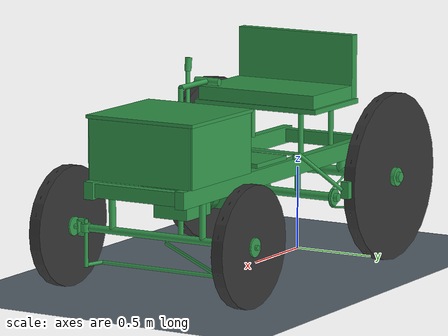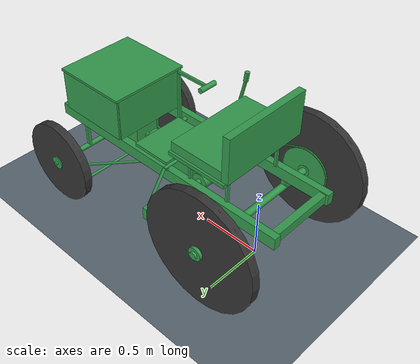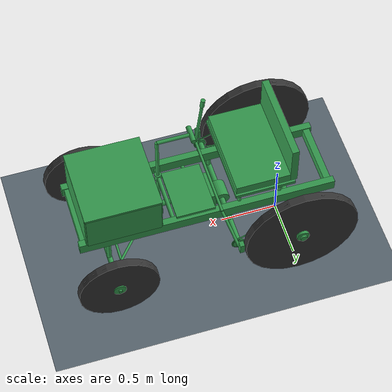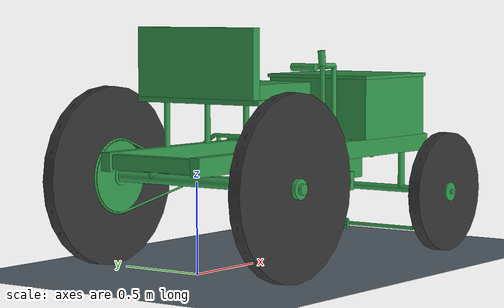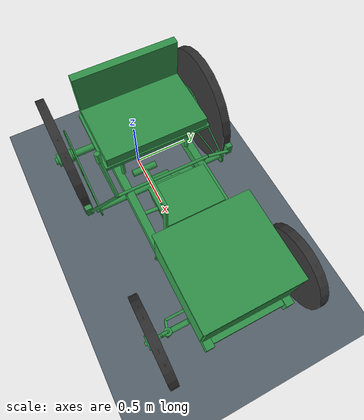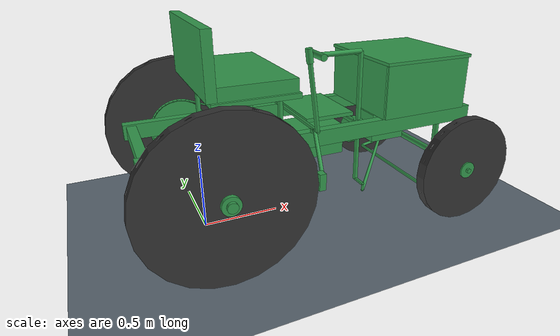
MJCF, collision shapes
<mujoco model="Benz Velo">
  <compiler angle="radian" inertiafromgeom="false" />
  <option timestep=".001" gravity="0 0 -9.81" integrator="implicitfast" cone="elliptic" impratio="50">
    <flag filterparent="disable" />
  </option>
  <visual>
    <global offwidth="1920" offheight="1080" />
  </visual>
  <default>
    <geom friction="0.8 .005 .0001" condim="3" solref=".005 1" />
  </default>
  <asset>
    <mesh name="chassis" file="chassis.obj" />
    <mesh name="knuckle_left" file="knuckle_left.obj" />
    <mesh name="knuckle_right" file="knuckle_right.obj" />
    <mesh name="tie_rod" file="tie_rod.obj" />
    <mesh name="column" file="column.obj" />
    <mesh name="drag_link" file="drag_link.obj" />
    <mesh name="rear_left" file="rear_left.obj" />
    <mesh name="front_left" file="front_left.obj" />
    <mesh name="rear_right" file="rear_right.obj" />
    <mesh name="front_right" file="front_right.obj" />
    <texture name="road_grid" type="2d" builtin="checker" rgb1=".25 .3 .34" rgb2=".45 .5 .54" width="256" height="256" />
    <material name="road" texture="road_grid" texrepeat="1 1" texuniform="true" />
  </asset>
  <worldbody>
    <light pos="0 -3 6" dir="0 0 -1" directional="true" />
    <geom name="slope" type="plane" size="1000 60 .1" quat="1 0 0 0" material="road" contype="1" conaffinity="6" />
    <body name="chassis" pos="0 0 0.003" quat="1 0 0 0">
      <freejoint name="root" />
      <inertial pos="0.8 0 0.62" mass="531.8" diaginertia="90 260 290" />
      <geom name="visual_chassis" type="mesh" mesh="chassis" contype="0" conaffinity="0" group="2" rgba=".25 .22 .2 1" />
      <geom name="Frame rail -1" type="box" contype="2" conaffinity="15" group="3" rgba=".2 .6 .3 .35" pos="0.725000024 -0.300000012 0.620000005" quat="1 0 0 0" size="1.125 0.0299999993 0.0500000007" />
      <geom name="Frame rail 1" type="box" contype="2" conaffinity="15" group="3" rgba=".2 .6 .3 .35" pos="0.725000024 0.300000012 0.620000005" quat="1 0 0 0" size="1.125 0.0299999993 0.0500000007" />
      <geom name="Frame crossmember -0.35" type="box" contype="2" conaffinity="15" group="3" rgba=".2 .6 .3 .35" pos="-0.349999994 0 0.620000005" quat="1 0 0 0" size="0.0299999993 0.300000012 0.0399999991" />
      <geom name="Frame crossmember 1.8" type="box" contype="2" conaffinity="15" group="3" rgba=".2 .6 .3 .35" pos="1.79999995 0 0.620000005" quat="1 0 0 0" size="0.0299999993 0.300000012 0.0399999991" />
      <geom name="Column bearing:0" type="cylinder" contype="2" conaffinity="15" group="3" rgba=".2 .6 .3 .35" fromto="1.01999998 -0.200000003 0.590000033 1.01999998 -0.200000003 0.649999976" size="0.03" />
      <geom name="Column crossmember -1:0" type="cylinder" contype="2" conaffinity="15" group="3" rgba=".2 .6 .3 .35" fromto="1.01999998 -0.270000011 0.620000005 1.01999998 -0.229999989 0.620000005" size="0.018" />
      <geom name="Column crossmember 1:0" type="cylinder" contype="2" conaffinity="15" group="3" rgba=".2 .6 .3 .35" fromto="1.01999998 -0.170000017 0.620000005 1.01999998 0.270000041 0.620000005" size="0.018" />
      <geom name="Axle mount -1:0" type="cylinder" contype="2" conaffinity="15" group="3" rgba=".2 .6 .3 .35" fromto="0 -0.300000012 0.49999997 0 -0.300000012 0.569999933" size="0.03" />
      <geom name="Front hanger -1:0" type="cylinder" contype="2" conaffinity="15" group="3" rgba=".2 .6 .3 .35" fromto="1.60000002 -0.300000012 0.569999993 1.60000002 -0.300000012 0.349999964" size="0.02" />
      <geom name="Axle mount 1:0" type="cylinder" contype="2" conaffinity="15" group="3" rgba=".2 .6 .3 .35" fromto="0 0.300000012 0.49999997 0 0.300000012 0.569999933" size="0.03" />
      <geom name="Front hanger 1:0" type="cylinder" contype="2" conaffinity="15" group="3" rgba=".2 .6 .3 .35" fromto="1.60000002 0.300000012 0.569999993 1.60000002 0.300000012 0.349999964" size="0.02" />
      <geom name="Rear axle:0" type="cylinder" contype="2" conaffinity="15" group="3" rgba=".2 .6 .3 .35" fromto="0 -0.705000043 0.500000119 0 0.705000043 0.499999911" size="0.03" />
      <geom name="Front beam:0" type="cylinder" contype="2" conaffinity="15" group="3" rgba=".2 .6 .3 .35" fromto="1.60000002 -0.450000048 0.350000054 1.60000002 0.450000048 0.349999934" size="0.022" />
      <geom name="Axle eye 1:0" type="cylinder" contype="2" conaffinity="15" group="3" rgba=".2 .6 .3 .35" fromto="1.60000002 0.479999989 0.324999988 1.60000002 0.479999989 0.375" size="0.03" />
      <geom name="Axle eye -1:0" type="cylinder" contype="2" conaffinity="15" group="3" rgba=".2 .6 .3 .35" fromto="1.60000002 -0.479999989 0.324999988 1.60000002 -0.479999989 0.375" size="0.03" />
      <geom name="Crankcase" type="box" contype="2" conaffinity="15" group="3" rgba=".2 .6 .3 .35" pos="1.33000004 0 0.519999981" quat="1 0 0 0" size="0.129999995 0.109999999 0.100000001" />
      <geom name="Engine bearer -1:0" type="cylinder" contype="2" conaffinity="15" group="3" rgba=".2 .6 .3 .35" fromto="1.33000004 -0.270000011 0.569999993 1.33000004 -0.109999985 0.579999983" size="0.016" />
      <geom name="Engine bearer 1:0" type="cylinder" contype="2" conaffinity="15" group="3" rgba=".2 .6 .3 .35" fromto="1.33000004 0.269999981 0.569999993 1.33000004 0.109999999 0.579999983" size="0.016" />
      <geom name="Cylinder 1:0" type="cylinder" contype="2" conaffinity="15" group="3" rgba=".2 .6 .3 .35" fromto="1.26999998 1.49011612e-08 0.619999945 1.26999998 0.0486214757 0.895746171" size="0.06" />
      <geom name="Cylinder 2:0" type="cylinder" contype="2" conaffinity="15" group="3" rgba=".2 .6 .3 .35" fromto="1.39999998 1.67638063e-08 0.620000005 1.39999998 -0.0486215055 0.895746112" size="0.06" />
      <geom name="Clutch shaft:0" type="cylinder" contype="2" conaffinity="15" group="3" rgba=".2 .6 .3 .35" fromto="1.21000004 0 0.5 0.940000057 0 0.5" size="0.025" />
      <geom name="Clutch cone:0" type="cylinder" contype="2" conaffinity="15" group="3" rgba=".2 .6 .3 .35" fromto="1.05999994 0 0.5 1.13000011 0 0.5" size="0.09" />
      <geom name="Gearbox" type="box" contype="2" conaffinity="15" group="3" rgba=".2 .6 .3 .35" pos="0.774999976 0 0.5" quat="1 0 0 0" size="0.174999997 0.129999995 0.100000001" />
      <geom name="Gearbox cradle -1:0" type="cylinder" contype="2" conaffinity="15" group="3" rgba=".2 .6 .3 .35" fromto="0.779999971 -0.270000011 0.569999993 0.779999971 -0.129999995 0.550000012" size="0.016" />
      <geom name="Gearbox cradle 1:0" type="cylinder" contype="2" conaffinity="15" group="3" rgba=".2 .6 .3 .35" fromto="0.779999971 0.270000011 0.569999993 0.779999971 0.129999995 0.550000012" size="0.016" />
      <geom name="Bevel housing:0" type="cylinder" contype="2" conaffinity="15" group="3" rgba=".2 .6 .3 .35" fromto="0.529999971 -0.0800000057 0.449999988 0.529999971 0.0800000057 0.449999988" size="0.07" />
      <geom name="Countershaft:0" type="cylinder" contype="2" conaffinity="15" group="3" rgba=".2 .6 .3 .35" fromto="0.529999971 -0.575000048 0.450000077 0.529999971 0.575000048 0.449999899" size="0.025" />
      <geom name="Countershaft hanger -1:0" type="cylinder" contype="2" conaffinity="15" group="3" rgba=".2 .6 .3 .35" fromto="0.529999971 -0.300000012 0.569999993 0.529999971 -0.300000012 0.449999988" size="0.018" />
      <geom name="Countershaft sprocket -1:0" type="cylinder" contype="2" conaffinity="15" group="3" rgba=".2 .6 .3 .35" fromto="0.529999971 -0.550999999 0.449999988 0.529999971 -0.538999915 0.449999988" size="0.05" />
      <geom name="Drive chain -1:0" type="capsule" contype="2" conaffinity="15" group="3" rgba=".2 .6 .3 .35" fromto="0.540662646 -0.545000017 0.395024478 0.547979653 -0.545000017 0.396964788" size="0.006" />
      <geom name="Drive chain -1:1" type="capsule" contype="2" conaffinity="15" group="3" rgba=".2 .6 .3 .35" fromto="0.547979653 -0.545000017 0.396964788 0.554968119 -0.545000017 0.39987424" size="0.006" />
      <geom name="Drive chain -1:2" type="capsule" contype="2" conaffinity="15" group="3" rgba=".2 .6 .3 .35" fromto="0.554968119 -0.545000017 0.39987424 0.561500371 -0.545000017 0.403699607" size="0.006" />
      <geom name="Drive chain -1:3" type="capsule" contype="2" conaffinity="15" group="3" rgba=".2 .6 .3 .35" fromto="0.561500371 -0.545000017 0.403699607 0.56745702 -0.545000017 0.408371001" size="0.006" />
      <geom name="Drive chain -1:4" type="capsule" contype="2" conaffinity="15" group="3" rgba=".2 .6 .3 .35" fromto="0.56745702 -0.545000017 0.408371001 0.57272917 -0.545000017 0.413803101" size="0.006" />
      <geom name="Drive chain -1:5" type="capsule" contype="2" conaffinity="15" group="3" rgba=".2 .6 .3 .35" fromto="0.57272917 -0.545000017 0.413803101 0.577220559 -0.545000017 0.419896603" size="0.006" />
      <geom name="Drive chain -1:6" type="capsule" contype="2" conaffinity="15" group="3" rgba=".2 .6 .3 .35" fromto="0.577220559 -0.545000017 0.419896603 0.580849111 -0.545000017 0.426540166" size="0.006" />
      <geom name="Drive chain -1:7" type="capsule" contype="2" conaffinity="15" group="3" rgba=".2 .6 .3 .35" fromto="0.580849111 -0.545000017 0.426540166 0.583548546 -0.545000017 0.433612436" size="0.006" />
      <geom name="Drive chain -1:8" type="capsule" contype="2" conaffinity="15" group="3" rgba=".2 .6 .3 .35" fromto="0.583548546 -0.545000017 0.433612436 0.585269451 -0.545000017 0.44098413" size="0.006" />
      <geom name="Drive chain -1:9" type="capsule" contype="2" conaffinity="15" group="3" rgba=".2 .6 .3 .35" fromto="0.585269451 -0.545000017 0.44098413 0.585980415 -0.545000017 0.448520571" size="0.006" />
      <geom name="Drive chain -1:10" type="capsule" contype="2" conaffinity="15" group="3" rgba=".2 .6 .3 .35" fromto="0.585980415 -0.545000017 0.448520571 0.585668504 -0.545000017 0.456084043" size="0.006" />
      <geom name="Drive chain -1:11" type="capsule" contype="2" conaffinity="15" group="3" rgba=".2 .6 .3 .35" fromto="0.585668504 -0.545000017 0.456084043 0.584339321 -0.545000017 0.463536352" size="0.006" />
      <geom name="Drive chain -1:12" type="capsule" contype="2" conaffinity="15" group="3" rgba=".2 .6 .3 .35" fromto="0.584339321 -0.545000017 0.463536352 0.582017243 -0.545000017 0.470741302" size="0.006" />
      <geom name="Drive chain -1:13" type="capsule" contype="2" conaffinity="15" group="3" rgba=".2 .6 .3 .35" fromto="0.582017243 -0.545000017 0.470741302 0.57874465 -0.545000017 0.477567255" size="0.006" />
      <geom name="Drive chain -1:14" type="capsule" contype="2" conaffinity="15" group="3" rgba=".2 .6 .3 .35" fromto="0.57874465 -0.545000017 0.477567255 0.574581385 -0.545000017 0.48388949" size="0.006" />
      <geom name="Drive chain -1:15" type="capsule" contype="2" conaffinity="15" group="3" rgba=".2 .6 .3 .35" fromto="0.574581385 -0.545000017 0.48388949 0.569603443 -0.545000017 0.489592463" size="0.006" />
      <geom name="Drive chain -1:16" type="capsule" contype="2" conaffinity="15" group="3" rgba=".2 .6 .3 .35" fromto="0.569603443 -0.545000017 0.489592463 0.563901901 -0.545000017 0.494571954" size="0.006" />
      <geom name="Drive chain -1:17" type="capsule" contype="2" conaffinity="15" group="3" rgba=".2 .6 .3 .35" fromto="0.563901901 -0.545000017 0.494571954 0.557580829 -0.545000017 0.498737007" size="0.006" />
      <geom name="Drive chain -1:18" type="capsule" contype="2" conaffinity="15" group="3" rgba=".2 .6 .3 .35" fromto="0.557580829 -0.545000017 0.498737007 0.550755799 -0.545000017 0.502011478" size="0.006" />
      <geom name="Drive chain -1:19" type="capsule" contype="2" conaffinity="15" group="3" rgba=".2 .6 .3 .35" fromto="0.550755799 -0.545000017 0.502011478 0.0763517097 -0.545000017 0.691328049" size="0.006" />
      <geom name="Drive chain -1:20" type="capsule" contype="2" conaffinity="15" group="3" rgba=".2 .6 .3 .35" fromto="0.0763517097 -0.545000017 0.691328049 0.0494035929 -0.545000017 0.699988246" size="0.006" />
      <geom name="Drive chain -1:21" type="capsule" contype="2" conaffinity="15" group="3" rgba=".2 .6 .3 .35" fromto="0.0494035929 -0.545000017 0.699988246 0.0215227306 -0.545000017 0.704872549" size="0.006" />
      <geom name="Drive chain -1:22" type="capsule" contype="2" conaffinity="15" group="3" rgba=".2 .6 .3 .35" fromto="0.0215227306 -0.545000017 0.704872549 -0.0067644855 -0.545000017 0.705888867" size="0.006" />
      <geom name="Drive chain -1:23" type="capsule" contype="2" conaffinity="15" group="3" rgba=".2 .6 .3 .35" fromto="-0.0067644855 -0.545000017 0.705888867 -0.0349239893 -0.545000017 0.70301801" size="0.006" />
      <geom name="Drive chain -1:24" type="capsule" contype="2" conaffinity="15" group="3" rgba=".2 .6 .3 .35" fromto="-0.0349239893 -0.545000017 0.70301801 -0.0624241158 -0.545000017 0.696314096" size="0.006" />
      <geom name="Drive chain -1:25" type="capsule" contype="2" conaffinity="15" group="3" rgba=".2 .6 .3 .35" fromto="-0.0624241158 -0.545000017 0.696314096 -0.0887456685 -0.545000017 0.685903788" size="0.006" />
      <geom name="Drive chain -1:26" type="capsule" contype="2" conaffinity="15" group="3" rgba=".2 .6 .3 .35" fromto="-0.0887456685 -0.545000017 0.685903788 -0.11339169 -0.545000017 0.67198348" size="0.006" />
      <geom name="Drive chain -1:27" type="capsule" contype="2" conaffinity="15" group="3" rgba=".2 .6 .3 .35" fromto="-0.11339169 -0.545000017 0.67198348 -0.135896847 -0.545000017 0.654816151" size="0.006" />
      <geom name="Drive chain -1:28" type="capsule" contype="2" conaffinity="15" group="3" rgba=".2 .6 .3 .35" fromto="-0.135896847 -0.545000017 0.654816151 -0.155836254 -0.545000017 0.634725869" size="0.006" />
      <geom name="Drive chain -1:29" type="capsule" contype="2" conaffinity="15" group="3" rgba=".2 .6 .3 .35" fromto="-0.155836254 -0.545000017 0.634725869 -0.172833428 -0.545000017 0.612091959" size="0.006" />
      <geom name="Drive chain -1:30" type="capsule" contype="2" conaffinity="15" group="3" rgba=".2 .6 .3 .35" fromto="-0.172833428 -0.545000017 0.612091959 -0.186567485 -0.545000017 0.587341666" size="0.006" />
      <geom name="Drive chain -1:31" type="capsule" contype="2" conaffinity="15" group="3" rgba=".2 .6 .3 .35" fromto="-0.186567485 -0.545000017 0.587341666 -0.196779117 -0.545000017 0.560942411" size="0.006" />
      <geom name="Drive chain -1:32" type="capsule" contype="2" conaffinity="15" group="3" rgba=".2 .6 .3 .35" fromto="-0.196779117 -0.545000017 0.560942411 -0.203275517 -0.545000017 0.533392489" size="0.006" />
      <geom name="Drive chain -1:33" type="capsule" contype="2" conaffinity="15" group="3" rgba=".2 .6 .3 .35" fromto="-0.203275517 -0.545000017 0.533392489 -0.205934048 -0.545000017 0.505212188" size="0.006" />
      <geom name="Drive chain -1:34" type="capsule" contype="2" conaffinity="15" group="3" rgba=".2 .6 .3 .35" fromto="-0.205934048 -0.545000017 0.505212188 -0.204704508 -0.545000017 0.47693342" size="0.006" />
      <geom name="Drive chain -1:35" type="capsule" contype="2" conaffinity="15" group="3" rgba=".2 .6 .3 .35" fromto="-0.204704508 -0.545000017 0.47693342 -0.199610099 -0.545000017 0.449090183" size="0.006" />
      <geom name="Drive chain -1:36" type="capsule" contype="2" conaffinity="15" group="3" rgba=".2 .6 .3 .35" fromto="-0.199610099 -0.545000017 0.449090183 -0.190747008 -0.545000017 0.422208101" size="0.006" />
      <geom name="Drive chain -1:37" type="capsule" contype="2" conaffinity="15" group="3" rgba=".2 .6 .3 .35" fromto="-0.190747008 -0.545000017 0.422208101 -0.178282589 -0.545000017 0.396794766" size="0.006" />
      <geom name="Drive chain -1:38" type="capsule" contype="2" conaffinity="15" group="3" rgba=".2 .6 .3 .35" fromto="-0.178282589 -0.545000017 0.396794766 -0.162452161 -0.545000017 0.373329967" size="0.006" />
      <geom name="Drive chain -1:39" type="capsule" contype="2" conaffinity="15" group="3" rgba=".2 .6 .3 .35" fromto="-0.162452161 -0.545000017 0.373329967 -0.143554598 -0.545000017 0.352256715" size="0.006" />
      <geom name="Drive chain -1:40" type="capsule" contype="2" conaffinity="15" group="3" rgba=".2 .6 .3 .35" fromto="-0.143554598 -0.545000017 0.352256715 -0.1219467 -0.545000017 0.333972871" size="0.006" />
      <geom name="Drive chain -1:41" type="capsule" contype="2" conaffinity="15" group="3" rgba=".2 .6 .3 .35" fromto="-0.1219467 -0.545000017 0.333972871 -0.0980364308 -0.545000017 0.318823695" size="0.006" />
      <geom name="Drive chain -1:42" type="capsule" contype="2" conaffinity="15" group="3" rgba=".2 .6 .3 .35" fromto="-0.0980364308 -0.545000017 0.318823695 -0.0722752139 -0.545000017 0.30709511" size="0.006" />
      <geom name="Drive chain -1:43" type="capsule" contype="2" conaffinity="15" group="3" rgba=".2 .6 .3 .35" fromto="-0.0722752139 -0.545000017 0.30709511 -0.0451494269 -0.545000017 0.299008638" size="0.006" />
      <geom name="Drive chain -1:44" type="capsule" contype="2" conaffinity="15" group="3" rgba=".2 .6 .3 .35" fromto="-0.0451494269 -0.545000017 0.299008638 -0.0171712078 -0.545000017 0.294716895" size="0.006" />
      <geom name="Drive chain -1:45" type="capsule" contype="2" conaffinity="15" group="3" rgba=".2 .6 .3 .35" fromto="-0.0171712078 -0.545000017 0.294716895 0.0111312037 -0.545000017 0.294300973" size="0.006" />
      <geom name="Drive chain -1:46" type="capsule" contype="2" conaffinity="15" group="3" rgba=".2 .6 .3 .35" fromto="0.0111312037 -0.545000017 0.294300973 0.0392234586 -0.545000017 0.297768652" size="0.006" />
      <geom name="Drive chain -1:47" type="capsule" contype="2" conaffinity="15" group="3" rgba=".2 .6 .3 .35" fromto="0.0392234586 -0.545000017 0.297768652 0.540662646 -0.545000017 0.395024478" size="0.006" />
      <geom name="Brake block -1" type="box" contype="2" conaffinity="15" group="3" rgba=".2 .6 .3 .35" pos="0.529999971 -0.625 0.5" quat="1 0 0 0" size="0.0199999996 0.0250000004 0.0500000007" />
      <geom name="Brake arm -1:0" type="cylinder" contype="2" conaffinity="15" group="3" rgba=".2 .6 .3 .35" fromto="0.550000012 -0.610000014 0.50000006 0.620000064 -0.359999985 0.699999988" size="0.012" />
      <geom name="Brake shaft bracket -1:0" type="cylinder" contype="2" conaffinity="15" group="3" rgba=".2 .6 .3 .35" fromto="0.620000005 -0.330000013 0.670000017 0.620000005 -0.330000013 0.699999988" size="0.012" />
      <geom name="Countershaft hanger 1:0" type="cylinder" contype="2" conaffinity="15" group="3" rgba=".2 .6 .3 .35" fromto="0.529999971 0.300000012 0.569999993 0.529999971 0.300000012 0.449999988" size="0.018" />
      <geom name="Countershaft sprocket 1:0" type="cylinder" contype="2" conaffinity="15" group="3" rgba=".2 .6 .3 .35" fromto="0.529999971 0.538999915 0.449999988 0.529999971 0.550999999 0.449999988" size="0.05" />
      <geom name="Drive chain 1:0" type="capsule" contype="2" conaffinity="15" group="3" rgba=".2 .6 .3 .35" fromto="0.540662646 0.545000017 0.395024478 0.547979653 0.545000017 0.396964788" size="0.006" />
      <geom name="Drive chain 1:1" type="capsule" contype="2" conaffinity="15" group="3" rgba=".2 .6 .3 .35" fromto="0.547979653 0.545000017 0.396964788 0.554968119 0.545000017 0.39987424" size="0.006" />
      <geom name="Drive chain 1:2" type="capsule" contype="2" conaffinity="15" group="3" rgba=".2 .6 .3 .35" fromto="0.554968119 0.545000017 0.39987424 0.561500371 0.545000017 0.403699607" size="0.006" />
      <geom name="Drive chain 1:3" type="capsule" contype="2" conaffinity="15" group="3" rgba=".2 .6 .3 .35" fromto="0.561500371 0.545000017 0.403699607 0.56745702 0.545000017 0.408371001" size="0.006" />
      <geom name="Drive chain 1:4" type="capsule" contype="2" conaffinity="15" group="3" rgba=".2 .6 .3 .35" fromto="0.56745702 0.545000017 0.408371001 0.57272917 0.545000017 0.413803101" size="0.006" />
      <geom name="Drive chain 1:5" type="capsule" contype="2" conaffinity="15" group="3" rgba=".2 .6 .3 .35" fromto="0.57272917 0.545000017 0.413803101 0.577220559 0.545000017 0.419896603" size="0.006" />
      <geom name="Drive chain 1:6" type="capsule" contype="2" conaffinity="15" group="3" rgba=".2 .6 .3 .35" fromto="0.577220559 0.545000017 0.419896603 0.580849111 0.545000017 0.426540166" size="0.006" />
      <geom name="Drive chain 1:7" type="capsule" contype="2" conaffinity="15" group="3" rgba=".2 .6 .3 .35" fromto="0.580849111 0.545000017 0.426540166 0.583548546 0.545000017 0.433612436" size="0.006" />
      <geom name="Drive chain 1:8" type="capsule" contype="2" conaffinity="15" group="3" rgba=".2 .6 .3 .35" fromto="0.583548546 0.545000017 0.433612436 0.585269451 0.545000017 0.44098413" size="0.006" />
      <geom name="Drive chain 1:9" type="capsule" contype="2" conaffinity="15" group="3" rgba=".2 .6 .3 .35" fromto="0.585269451 0.545000017 0.44098413 0.585980415 0.545000017 0.448520571" size="0.006" />
      <geom name="Drive chain 1:10" type="capsule" contype="2" conaffinity="15" group="3" rgba=".2 .6 .3 .35" fromto="0.585980415 0.545000017 0.448520571 0.585668504 0.545000017 0.456084043" size="0.006" />
      <geom name="Drive chain 1:11" type="capsule" contype="2" conaffinity="15" group="3" rgba=".2 .6 .3 .35" fromto="0.585668504 0.545000017 0.456084043 0.584339321 0.545000017 0.463536352" size="0.006" />
      <geom name="Drive chain 1:12" type="capsule" contype="2" conaffinity="15" group="3" rgba=".2 .6 .3 .35" fromto="0.584339321 0.545000017 0.463536352 0.582017243 0.545000017 0.470741302" size="0.006" />
      <geom name="Drive chain 1:13" type="capsule" contype="2" conaffinity="15" group="3" rgba=".2 .6 .3 .35" fromto="0.582017243 0.545000017 0.470741302 0.57874465 0.545000017 0.477567255" size="0.006" />
      <geom name="Drive chain 1:14" type="capsule" contype="2" conaffinity="15" group="3" rgba=".2 .6 .3 .35" fromto="0.57874465 0.545000017 0.477567255 0.574581385 0.545000017 0.48388949" size="0.006" />
      <geom name="Drive chain 1:15" type="capsule" contype="2" conaffinity="15" group="3" rgba=".2 .6 .3 .35" fromto="0.574581385 0.545000017 0.48388949 0.569603443 0.545000017 0.489592463" size="0.006" />
      <geom name="Drive chain 1:16" type="capsule" contype="2" conaffinity="15" group="3" rgba=".2 .6 .3 .35" fromto="0.569603443 0.545000017 0.489592463 0.563901901 0.545000017 0.494571954" size="0.006" />
      <geom name="Drive chain 1:17" type="capsule" contype="2" conaffinity="15" group="3" rgba=".2 .6 .3 .35" fromto="0.563901901 0.545000017 0.494571954 0.557580829 0.545000017 0.498737007" size="0.006" />
      <geom name="Drive chain 1:18" type="capsule" contype="2" conaffinity="15" group="3" rgba=".2 .6 .3 .35" fromto="0.557580829 0.545000017 0.498737007 0.550755799 0.545000017 0.502011478" size="0.006" />
      <geom name="Drive chain 1:19" type="capsule" contype="2" conaffinity="15" group="3" rgba=".2 .6 .3 .35" fromto="0.550755799 0.545000017 0.502011478 0.0763517097 0.545000017 0.691328049" size="0.006" />
      <geom name="Drive chain 1:20" type="capsule" contype="2" conaffinity="15" group="3" rgba=".2 .6 .3 .35" fromto="0.0763517097 0.545000017 0.691328049 0.0494035929 0.545000017 0.699988246" size="0.006" />
      <geom name="Drive chain 1:21" type="capsule" contype="2" conaffinity="15" group="3" rgba=".2 .6 .3 .35" fromto="0.0494035929 0.545000017 0.699988246 0.0215227306 0.545000017 0.704872549" size="0.006" />
      <geom name="Drive chain 1:22" type="capsule" contype="2" conaffinity="15" group="3" rgba=".2 .6 .3 .35" fromto="0.0215227306 0.545000017 0.704872549 -0.0067644855 0.545000017 0.705888867" size="0.006" />
      <geom name="Drive chain 1:23" type="capsule" contype="2" conaffinity="15" group="3" rgba=".2 .6 .3 .35" fromto="-0.0067644855 0.545000017 0.705888867 -0.0349239893 0.545000017 0.70301801" size="0.006" />
      <geom name="Drive chain 1:24" type="capsule" contype="2" conaffinity="15" group="3" rgba=".2 .6 .3 .35" fromto="-0.0349239893 0.545000017 0.70301801 -0.0624241158 0.545000017 0.696314096" size="0.006" />
      <geom name="Drive chain 1:25" type="capsule" contype="2" conaffinity="15" group="3" rgba=".2 .6 .3 .35" fromto="-0.0624241158 0.545000017 0.696314096 -0.0887456685 0.545000017 0.685903788" size="0.006" />
      <geom name="Drive chain 1:26" type="capsule" contype="2" conaffinity="15" group="3" rgba=".2 .6 .3 .35" fromto="-0.0887456685 0.545000017 0.685903788 -0.11339169 0.545000017 0.67198348" size="0.006" />
      <geom name="Drive chain 1:27" type="capsule" contype="2" conaffinity="15" group="3" rgba=".2 .6 .3 .35" fromto="-0.11339169 0.545000017 0.67198348 -0.135896847 0.545000017 0.654816151" size="0.006" />
      <geom name="Drive chain 1:28" type="capsule" contype="2" conaffinity="15" group="3" rgba=".2 .6 .3 .35" fromto="-0.135896847 0.545000017 0.654816151 -0.155836254 0.545000017 0.634725869" size="0.006" />
      <geom name="Drive chain 1:29" type="capsule" contype="2" conaffinity="15" group="3" rgba=".2 .6 .3 .35" fromto="-0.155836254 0.545000017 0.634725869 -0.172833428 0.545000017 0.612091959" size="0.006" />
      <geom name="Drive chain 1:30" type="capsule" contype="2" conaffinity="15" group="3" rgba=".2 .6 .3 .35" fromto="-0.172833428 0.545000017 0.612091959 -0.186567485 0.545000017 0.587341666" size="0.006" />
      <geom name="Drive chain 1:31" type="capsule" contype="2" conaffinity="15" group="3" rgba=".2 .6 .3 .35" fromto="-0.186567485 0.545000017 0.587341666 -0.196779117 0.545000017 0.560942411" size="0.006" />
      <geom name="Drive chain 1:32" type="capsule" contype="2" conaffinity="15" group="3" rgba=".2 .6 .3 .35" fromto="-0.196779117 0.545000017 0.560942411 -0.203275517 0.545000017 0.533392489" size="0.006" />
      <geom name="Drive chain 1:33" type="capsule" contype="2" conaffinity="15" group="3" rgba=".2 .6 .3 .35" fromto="-0.203275517 0.545000017 0.533392489 -0.205934048 0.545000017 0.505212188" size="0.006" />
      <geom name="Drive chain 1:34" type="capsule" contype="2" conaffinity="15" group="3" rgba=".2 .6 .3 .35" fromto="-0.205934048 0.545000017 0.505212188 -0.204704508 0.545000017 0.47693342" size="0.006" />
      <geom name="Drive chain 1:35" type="capsule" contype="2" conaffinity="15" group="3" rgba=".2 .6 .3 .35" fromto="-0.204704508 0.545000017 0.47693342 -0.199610099 0.545000017 0.449090183" size="0.006" />
      <geom name="Drive chain 1:36" type="capsule" contype="2" conaffinity="15" group="3" rgba=".2 .6 .3 .35" fromto="-0.199610099 0.545000017 0.449090183 -0.190747008 0.545000017 0.422208101" size="0.006" />
      <geom name="Drive chain 1:37" type="capsule" contype="2" conaffinity="15" group="3" rgba=".2 .6 .3 .35" fromto="-0.190747008 0.545000017 0.422208101 -0.178282589 0.545000017 0.396794766" size="0.006" />
      <geom name="Drive chain 1:38" type="capsule" contype="2" conaffinity="15" group="3" rgba=".2 .6 .3 .35" fromto="-0.178282589 0.545000017 0.396794766 -0.162452161 0.545000017 0.373329967" size="0.006" />
      <geom name="Drive chain 1:39" type="capsule" contype="2" conaffinity="15" group="3" rgba=".2 .6 .3 .35" fromto="-0.162452161 0.545000017 0.373329967 -0.143554598 0.545000017 0.352256715" size="0.006" />
      <geom name="Drive chain 1:40" type="capsule" contype="2" conaffinity="15" group="3" rgba=".2 .6 .3 .35" fromto="-0.143554598 0.545000017 0.352256715 -0.1219467 0.545000017 0.333972871" size="0.006" />
      <geom name="Drive chain 1:41" type="capsule" contype="2" conaffinity="15" group="3" rgba=".2 .6 .3 .35" fromto="-0.1219467 0.545000017 0.333972871 -0.0980364308 0.545000017 0.318823695" size="0.006" />
      <geom name="Drive chain 1:42" type="capsule" contype="2" conaffinity="15" group="3" rgba=".2 .6 .3 .35" fromto="-0.0980364308 0.545000017 0.318823695 -0.0722752139 0.545000017 0.30709511" size="0.006" />
      <geom name="Drive chain 1:43" type="capsule" contype="2" conaffinity="15" group="3" rgba=".2 .6 .3 .35" fromto="-0.0722752139 0.545000017 0.30709511 -0.0451494269 0.545000017 0.299008638" size="0.006" />
      <geom name="Drive chain 1:44" type="capsule" contype="2" conaffinity="15" group="3" rgba=".2 .6 .3 .35" fromto="-0.0451494269 0.545000017 0.299008638 -0.0171712078 0.545000017 0.294716895" size="0.006" />
      <geom name="Drive chain 1:45" type="capsule" contype="2" conaffinity="15" group="3" rgba=".2 .6 .3 .35" fromto="-0.0171712078 0.545000017 0.294716895 0.0111312037 0.545000017 0.294300973" size="0.006" />
      <geom name="Drive chain 1:46" type="capsule" contype="2" conaffinity="15" group="3" rgba=".2 .6 .3 .35" fromto="0.0111312037 0.545000017 0.294300973 0.0392234586 0.545000017 0.297768652" size="0.006" />
      <geom name="Drive chain 1:47" type="capsule" contype="2" conaffinity="15" group="3" rgba=".2 .6 .3 .35" fromto="0.0392234586 0.545000017 0.297768652 0.540662646 0.545000017 0.395024478" size="0.006" />
      <geom name="Brake block 1" type="box" contype="2" conaffinity="15" group="3" rgba=".2 .6 .3 .35" pos="0.529999971 0.625 0.5" quat="1 0 0 0" size="0.0199999996 0.0250000004 0.0500000007" />
      <geom name="Brake arm 1:0" type="cylinder" contype="2" conaffinity="15" group="3" rgba=".2 .6 .3 .35" fromto="0.550000072 0.610000014 0.5 0.620000005 0.360000014 0.700000048" size="0.012" />
      <geom name="Brake shaft bracket 1:0" type="cylinder" contype="2" conaffinity="15" group="3" rgba=".2 .6 .3 .35" fromto="0.620000005 0.330000013 0.670000017 0.620000005 0.330000013 0.699999988" size="0.012" />
      <geom name="Brake cross shaft:0" type="cylinder" contype="2" conaffinity="15" group="3" rgba=".2 .6 .3 .35" fromto="0.620000005 -0.409999907 0.699999988 0.620000005 0.359999955 0.699999988" size="0.012" />
      <geom name="Brake lever:0" type="cylinder" contype="2" conaffinity="15" group="3" rgba=".2 .6 .3 .35" fromto="0.620000005 -0.400000006 0.699999928 0.550000072 -0.440000027 1.12" size="0.014" />
      <geom name="Brake lever grip:0" type="cylinder" contype="2" conaffinity="15" group="3" rgba=".2 .6 .3 .35" fromto="0.550000012 -0.439999998 1.12000012 0.540000021 -0.439999998 1.20000005" size="0.02" />
      <geom name="Seat support 0.08.-1:0" type="cylinder" contype="2" conaffinity="15" group="3" rgba=".2 .6 .3 .35" fromto="0.0799999982 -0.270000011 0.670000017 0.0799999982 -0.270000011 0.920000017" size="0.016" />
      <geom name="Seat support 0.08.1:0" type="cylinder" contype="2" conaffinity="15" group="3" rgba=".2 .6 .3 .35" fromto="0.0799999982 0.270000011 0.670000017 0.0799999982 0.270000011 0.920000017" size="0.016" />
      <geom name="Seat support 0.44.-1:0" type="cylinder" contype="2" conaffinity="15" group="3" rgba=".2 .6 .3 .35" fromto="0.439999998 -0.270000011 0.670000017 0.439999998 -0.270000011 0.920000017" size="0.016" />
      <geom name="Seat support 0.44.1:0" type="cylinder" contype="2" conaffinity="15" group="3" rgba=".2 .6 .3 .35" fromto="0.439999998 0.270000011 0.670000017 0.439999998 0.270000011 0.920000017" size="0.016" />
      <geom name="Seat base" type="box" contype="2" conaffinity="15" group="3" rgba=".2 .6 .3 .35" pos="0.25999999 0 0.935000002" quat="1 0 0 0" size="0.25999999 0.409999996 0.0149999997" />
      <geom name="Seat cushion" type="box" contype="2" conaffinity="15" group="3" rgba=".2 .6 .3 .35" pos="0.275000006 0 0.99000001" quat="1 0 0 0" size="0.234999999 0.389999986 0.0399999991" />
      <geom name="Seat back" type="box" contype="2" conaffinity="15" group="3" rgba=".2 .6 .3 .35" pos="0.00999999978 0 1.13999999" quat="1 0 0 0" size="0.0299999993 0.389999986 0.189999998" />
      <geom name="Footboard" type="box" contype="2" conaffinity="15" group="3" rgba=".2 .6 .3 .35" pos="0.829999983 0.0649999976 0.682500005" quat="1 0 0 0" size="0.170000002 0.234999999 0.0125000002" />
      <geom name="Dash" type="box" contype="2" conaffinity="15" group="3" rgba=".2 .6 .3 .35" pos="1.13999999 0 0.845000029" quat="1 0 0 0" size="0.00999999978 0.330000013 0.174999997" />
      <geom name="Engine box side -1" type="box" contype="2" conaffinity="15" group="3" rgba=".2 .6 .3 .35" pos="1.46000004 -0.335999995 0.845000029" quat="1 0 0 0" size="0.319999993 0.00600000005 0.174999997" />
      <geom name="Engine box side 1" type="box" contype="2" conaffinity="15" group="3" rgba=".2 .6 .3 .35" pos="1.46000004 0.335999995 0.845000029" quat="1 0 0 0" size="0.319999993 0.00600000005 0.174999997" />
      <geom name="Engine box lid" type="box" contype="2" conaffinity="15" group="3" rgba=".2 .6 .3 .35" pos="1.46000004 0 1.02999997" quat="1 0 0 0" size="0.330000013 0.349999994 0.00999999978" />
      <geom name="Engine box front" type="box" contype="2" conaffinity="15" group="3" rgba=".2 .6 .3 .35" pos="1.78499997 0 0.845000029" quat="1 0 0 0" size="0.00600000005 0.330000013 0.174999997" />
      <body name="knuckle_left" pos="1.6 0.48 0.35">
        <joint name="knuckle_left_joint" type="hinge" axis="0 0 1" damping="0.5" armature="0.01" />
        <inertial pos="-0.00672603567 0.0261947408 -0.0719958069" mass="2.5" fullinertia="0.0313614684 0.0232759039 0.0106760634 -0.000859220908 -0.00248870368 -0.00824547533" />
        <geom name="visual_knuckle_left" type="mesh" mesh="knuckle_left" contype="0" conaffinity="0" group="2" rgba=".25 .22 .2 1" />
        <geom name="Kingpin 1:0" type="cylinder" contype="2" conaffinity="15" group="3" rgba=".2 .6 .3 .35" fromto="0 0 -0.230000004 0 0 0.0499999821" size="0.012" />
        <geom name="Knuckle upper ear 1:0" type="cylinder" contype="2" conaffinity="15" group="3" rgba=".2 .6 .3 .35" fromto="0 0 0.0410000086 0 0.0480000079 0.0410000086" size="0.012" />
        <geom name="Knuckle lower ear 1:0" type="cylinder" contype="2" conaffinity="15" group="3" rgba=".2 .6 .3 .35" fromto="0 0 -0.0410000086 0 0.0480000079 -0.0410000086" size="0.012" />
        <geom name="Knuckle web 1:0" type="cylinder" contype="2" conaffinity="15" group="3" rgba=".2 .6 .3 .35" fromto="0 0.0480000079 -0.0410000086 0 0.0480000079 0.0410000086" size="0.012" />
        <geom name="Stub axle 1:0" type="cylinder" contype="2" conaffinity="15" group="3" rgba=".2 .6 .3 .35" fromto="0 0.0479999483 0 0 0.180000037 0" size="0.015" />
        <geom name="Steering arm 1:0" type="cylinder" contype="2" conaffinity="15" group="3" rgba=".2 .6 .3 .35" fromto="0 2.98023224e-08 -0.219999999 -0.114939213 -0.034481734 -0.219999999" size="0.011" />
        <geom name="Drag arm:0" type="cylinder" contype="2" conaffinity="15" group="3" rgba=".2 .6 .3 .35" fromto="0 2.98023224e-08 -0.149999991 0 -0.099999994 -0.149999991" size="0.011" />
        <geom name="Drag arm stud:0" type="cylinder" contype="2" conaffinity="15" group="3" rgba=".2 .6 .3 .35" fromto="0 -0.099999994 -0.149999991 0 -0.099999994 -0.177999988" size="0.008" />
        <body name="tie_rod" pos="-0.114939154 -0.0344817463 -0.22">
          <joint name="tie_rod_joint" type="hinge" axis="0 0 1" damping="0.5" armature="0.01" />
          <inertial pos="0 -0.445518255 5.51453742e-24" mass="1.2" fullinertia="0.105871503 1.2e-05 0.105871503 0 0 -1.41626458e-08" />
          <geom name="visual_tie_rod" type="mesh" mesh="tie_rod" contype="0" conaffinity="0" group="2" rgba=".25 .22 .2 1" />
          <geom name="Tie rod:0" type="cylinder" contype="2" conaffinity="15" group="3" rgba=".2 .6 .3 .35" fromto="0 5.96046448e-08 5.96046448e-08 0 -0.89103657 -5.96046448e-08" size="0.011" />
        </body>
        <body name="front_left" pos="0 0.12 0">
          <joint name="front_left_joint" type="hinge" axis="0 1 0" damping=".01" solreffriction=".004 1" solimpfriction=".999 .999 .001 .5 2" />
          <inertial pos="0 0 0" mass="11.0" diaginertia="0.67375 1.3475 0.67375" />
          <geom name="front_left_envelope" type="cylinder" fromto="0 -0.035 0 0 0.035 0" size="0.35" contype="8" conaffinity="2" group="3" rgba=".2 .2 .2 .2" />
          <geom name="front_left_rolling" type="ellipsoid" size="0.35 0.02 0.35" solref="-2300 -48" solimp="0.5 0.95 0.01 0.5 2" contype="4" conaffinity="3" group="3" rgba=".1 .1 .1 .5" />
          <geom name="visual_front_left" type="mesh" mesh="front_left" contype="0" conaffinity="0" group="2" rgba=".25 .22 .2 1" />
          <geom name="front_left.hub:0" type="cylinder" contype="2" conaffinity="15" group="3" rgba=".2 .6 .3 .35" fromto="0 -0.0450000167 0 0 0.0450000167 0" size="0.055" />
        </body>
      </body>
      <body name="knuckle_right" pos="1.6 -0.48 0.35">
        <joint name="knuckle_right_joint" type="hinge" axis="0 0 1" damping="0.5" armature="0.01" />
        <inertial pos="-0.00757414663 -0.0366156916 -0.0619322515" mass="2.5" fullinertia="0.0302229948 0.023920032 0.00918483648 0.00116488781 -0.00299307074 0.00691896258" />
        <geom name="visual_knuckle_right" type="mesh" mesh="knuckle_right" contype="0" conaffinity="0" group="2" rgba=".25 .22 .2 1" />
        <geom name="Kingpin -1:0" type="cylinder" contype="2" conaffinity="15" group="3" rgba=".2 .6 .3 .35" fromto="0 0 -0.230000004 0 0 0.0499999821" size="0.012" />
        <geom name="Knuckle upper ear -1:0" type="cylinder" contype="2" conaffinity="15" group="3" rgba=".2 .6 .3 .35" fromto="0 0 0.0410000086 0 -0.0480000079 0.0410000086" size="0.012" />
        <geom name="Knuckle lower ear -1:0" type="cylinder" contype="2" conaffinity="15" group="3" rgba=".2 .6 .3 .35" fromto="0 0 -0.0410000086 0 -0.0480000079 -0.0410000086" size="0.012" />
        <geom name="Knuckle web -1:0" type="cylinder" contype="2" conaffinity="15" group="3" rgba=".2 .6 .3 .35" fromto="0 -0.0480000079 -0.0410000086 0 -0.0480000079 0.0410000086" size="0.012" />
        <geom name="Stub axle -1:0" type="cylinder" contype="2" conaffinity="15" group="3" rgba=".2 .6 .3 .35" fromto="0 -0.0479999483 0 0 -0.180000037 0" size="0.015" />
        <geom name="Steering arm -1:0" type="cylinder" contype="2" conaffinity="15" group="3" rgba=".2 .6 .3 .35" fromto="0 -2.98023224e-08 -0.219999999 -0.114939213 0.034481734 -0.219999999" size="0.011" />
        <body name="front_right" pos="0 -0.12 0">
          <joint name="front_right_joint" type="hinge" axis="0 1 0" damping=".01" solreffriction=".004 1" solimpfriction=".999 .999 .001 .5 2" />
          <inertial pos="0 0 0" mass="11.0" diaginertia="0.67375 1.3475 0.67375" />
          <geom name="front_right_envelope" type="cylinder" fromto="0 -0.035 0 0 0.035 0" size="0.35" contype="8" conaffinity="2" group="3" rgba=".2 .2 .2 .2" />
          <geom name="front_right_rolling" type="ellipsoid" size="0.35 0.02 0.35" solref="-2300 -48" solimp="0.5 0.95 0.01 0.5 2" contype="4" conaffinity="3" group="3" rgba=".1 .1 .1 .5" />
          <geom name="visual_front_right" type="mesh" mesh="front_right" contype="0" conaffinity="0" group="2" rgba=".25 .22 .2 1" />
          <geom name="front_right.hub:0" type="cylinder" contype="2" conaffinity="15" group="3" rgba=".2 .6 .3 .35" fromto="0 -0.0450000167 0 0 0.0450000167 0" size="0.055" />
        </body>
      </body>
      <body name="column" pos="1.02 -0.2 0.2">
        <joint name="column_joint" type="hinge" axis="0 0 1" damping="0.5" armature="0.01" limited="true" range="-0.523598776 0.523598776" />
        <inertial pos="-0.0878347483 -0.00222468167 0.613243004" mass="3.0" fullinertia="0.330415047 0.376847019 0.0508526501 0.000586213719 0.0755616953 -0.00403756629" />
        <geom name="visual_column" type="mesh" mesh="column" contype="0" conaffinity="0" group="2" rgba=".25 .22 .2 1" />
        <geom name="Steering column:0" type="cylinder" contype="2" conaffinity="15" group="3" rgba=".2 .6 .3 .35" fromto="0 0 0.0150000304 0 0 0.900000036" size="0.016" />
        <geom name="Pitman arm:0" type="cylinder" contype="2" conaffinity="15" group="3" rgba=".2 .6 .3 .35" fromto="0 1.49011612e-08 0.0150000006 0 -0.100000009 0.0150000006" size="0.011" />
        <geom name="Pitman stud:0" type="cylinder" contype="2" conaffinity="15" group="3" rgba=".2 .6 .3 .35" fromto="0 -0.100000009 0.0150000006 0 -0.100000009 -0.0279999822" size="0.008" />
        <geom name="Tiller:0" type="cylinder" contype="2" conaffinity="15" group="3" rgba=".2 .6 .3 .35" fromto="0 0 0.900000036 -0.299999952 0 0.900000036" size="0.016" />
        <geom name="Tiller grip:0" type="cylinder" contype="2" conaffinity="15" group="3" rgba=".2 .6 .3 .35" fromto="-0.299999952 -0.0799999982 0.900000036 -0.299999952 0.0800000057 0.900000036" size="0.022" />
        <body name="drag_link" pos="0 -0.1 -0.028">
          <joint name="drag_link_joint" type="hinge" axis="0 0 1" damping="0.5" armature="0.01" />
          <inertial pos="0.289999962 0.340000018 -8.27180613e-25" mass="1.0" fullinertia="0.0513877924 0.0373877679 0.0887655603 -0.0438222227 -3.84118771e-09 -4.50346269e-09" />
          <geom name="visual_drag_link" type="mesh" mesh="drag_link" contype="0" conaffinity="0" group="2" rgba=".25 .22 .2 1" />
          <geom name="Drag link:0" type="cylinder" contype="2" conaffinity="15" group="3" rgba=".2 .6 .3 .35" fromto="0 -2.98023224e-08 -2.98023224e-08 0.579999924 0.680000067 2.98023224e-08" size="0.011" />
        </body>
      </body>
      <body name="rear_left" pos="0 0.625 0.5">
        <joint name="rear_left_joint" type="hinge" axis="0 1 0" damping=".01" solreffriction=".004 1" solimpfriction=".999 .999 .001 .5 2" />
        <inertial pos="0 0 0" mass="18.0" diaginertia="2.25 4.5 2.25" />
        <geom name="rear_left_envelope" type="cylinder" fromto="0 -0.035 0 0 0.035 0" size="0.5" contype="8" conaffinity="2" group="3" rgba=".2 .2 .2 .2" />
        <geom name="rear_left_rolling" type="ellipsoid" size="0.5 0.02 0.5" solref="-2300 -48" solimp="0.5 0.95 0.01 0.5 2" contype="4" conaffinity="3" group="3" rgba=".1 .1 .1 .5" />
        <geom name="visual_rear_left" type="mesh" mesh="rear_left" contype="0" conaffinity="0" group="2" rgba=".25 .22 .2 1" />
        <geom name="rear_left.hub:0" type="cylinder" contype="2" conaffinity="15" group="3" rgba=".2 .6 .3 .35" fromto="0 -0.0600000024 0 0 0.0600000024 0" size="0.055" />
        <geom name="rear_left.sprocket_carrier:0" type="cylinder" contype="2" conaffinity="15" group="3" rgba=".2 .6 .3 .35" fromto="0 -0.0899999738 0 0 -0.0550000072 0" size="0.05" />
        <geom name="rear_left.drive_sprocket:0" type="cylinder" contype="2" conaffinity="15" group="3" rgba=".2 .6 .3 .35" fromto="0 -0.0860000849 0 0 -0.074000001 0" size="0.2" />
      </body>
      <body name="rear_right" pos="0 -0.625 0.5">
        <joint name="rear_right_joint" type="hinge" axis="0 1 0" damping=".01" solreffriction=".004 1" solimpfriction=".999 .999 .001 .5 2" />
        <inertial pos="0 0 0" mass="18.0" diaginertia="2.25 4.5 2.25" />
        <geom name="rear_right_envelope" type="cylinder" fromto="0 -0.035 0 0 0.035 0" size="0.5" contype="8" conaffinity="2" group="3" rgba=".2 .2 .2 .2" />
        <geom name="rear_right_rolling" type="ellipsoid" size="0.5 0.02 0.5" solref="-2300 -48" solimp="0.5 0.95 0.01 0.5 2" contype="4" conaffinity="3" group="3" rgba=".1 .1 .1 .5" />
        <geom name="visual_rear_right" type="mesh" mesh="rear_right" contype="0" conaffinity="0" group="2" rgba=".25 .22 .2 1" />
        <geom name="rear_right.hub:0" type="cylinder" contype="2" conaffinity="15" group="3" rgba=".2 .6 .3 .35" fromto="0 -0.0600000024 0 0 0.0600000024 0" size="0.055" />
        <geom name="rear_right.sprocket_carrier:0" type="cylinder" contype="2" conaffinity="15" group="3" rgba=".2 .6 .3 .35" fromto="0 0.0899999738 0 0 0.0550000072 0" size="0.05" />
        <geom name="rear_right.drive_sprocket:0" type="cylinder" contype="2" conaffinity="15" group="3" rgba=".2 .6 .3 .35" fromto="0 0.074000001 0 0 0.0860000849 0" size="0.2" />
      </body>
    </body>
  </worldbody>
  <contact>
    <exclude body1="chassis" body2="column" />
    <exclude body1="chassis" body2="knuckle_left" />
    <exclude body1="chassis" body2="knuckle_right" />
    <exclude body1="chassis" body2="rear_left" />
    <exclude body1="chassis" body2="rear_right" />
    <exclude body1="column" body2="drag_link" />
    <exclude body1="drag_link" body2="knuckle_left" />
    <exclude body1="front_left" body2="knuckle_left" />
    <exclude body1="front_right" body2="knuckle_right" />
    <exclude body1="knuckle_left" body2="tie_rod" />
    <exclude body1="knuckle_right" body2="tie_rod" />
  </contact>
  <equality>
    <connect body1="tie_rod" body2="knuckle_right" anchor="0 -0.891036507 0" solref=".002 1" />
    <connect body1="drag_link" body2="knuckle_left" anchor="0.58 0.68 0" solref=".002 1" />
  </equality>
  <actuator>
    <position name="column" joint="column_joint" kp="1000" kv="30" ctrllimited="true" ctrlrange="-0.523598776 0.523598776" forcelimited="true" forcerange="-60 60" />
    <motor name="drive_first" tendon="differential" gear="18.981428571428573" ctrllimited="true" ctrlrange="0 37.9425384" />
    <motor name="drive_second" tendon="differential" gear="11.513928571428572" ctrllimited="true" ctrlrange="0 37.9425384" />
    <motor name="drive_third" tendon="differential" gear="7.430714285714286" ctrllimited="true" ctrlrange="0 37.9425384" />
  </actuator>
  <tendon>
    <fixed name="differential" frictionloss="0" solreffriction=".004 1" solimpfriction=".999 .999 .001 .5 2">
      <joint joint="rear_left_joint" coef="0.5" />
      <joint joint="rear_right_joint" coef="0.5" />
    </fixed>
  </tendon>
</mujoco>
